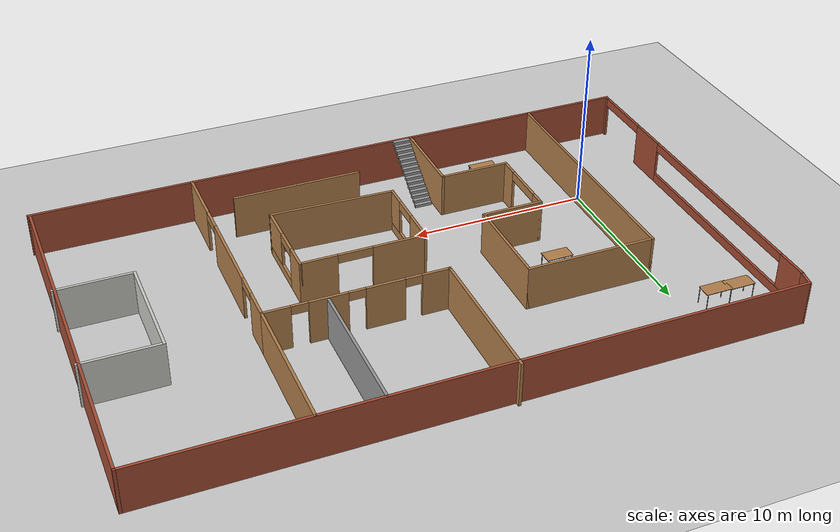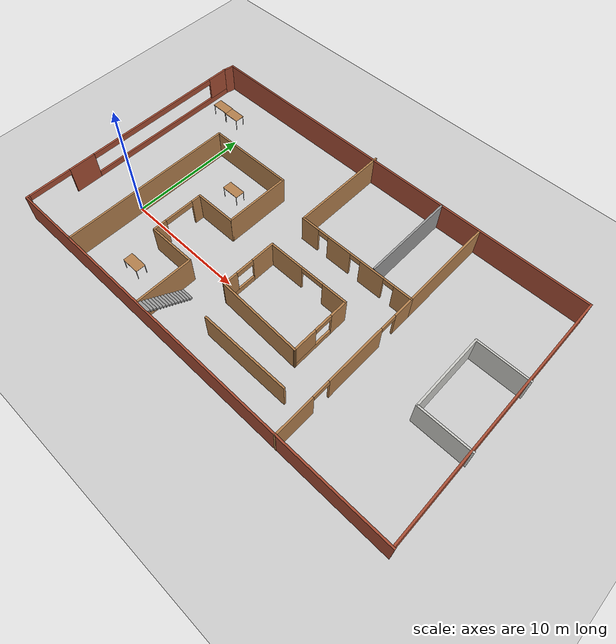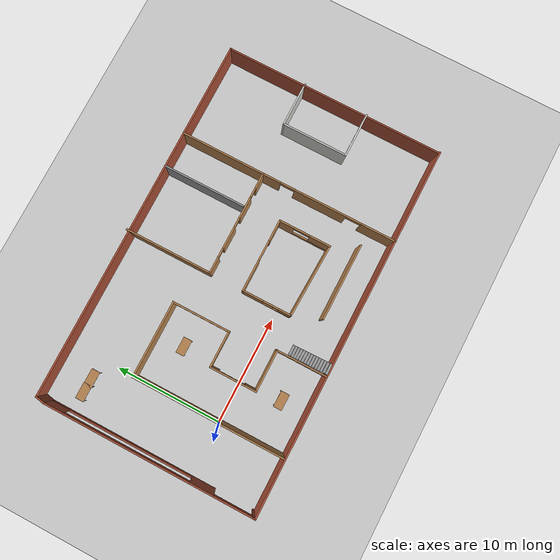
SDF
<sdf version="1.6">
 <world name="default">
  <model name="ground_plane">
   <static>1</static>
   <link name="link">
    <collision name="collision">
     <geometry><plane><normal>0 0 1</normal><size>100 100</size></plane></geometry>
     <surface><friction><ode><mu>100</mu><mu2>50</mu2></ode></friction></surface>
    </collision>
    <visual name="visual">
     <cast_shadows>0</cast_shadows>
     <geometry><plane><normal>0 0 1</normal><size>100 100</size></plane></geometry>
     <material>
      <script><uri>file://media/materials/scripts/gazebo.material</uri><name>Gazebo/Grey</name></script>
     </material>
    </visual>
   </link>
  </model>
  <model name="mybuilding">
   <pose>12.3376 4.27138 0 0 -0 0</pose>
   <link name="Stairs_0">
    <visual name="Stairs_0_Visual_0">
     <pose>-3.86206 -7.02365 0.083333 0 -0 0</pose>
     <geometry><box><size>1 0.233333 0.166667</size></box></geometry>
     <material>
      <script><uri>file://media/materials/scripts/gazebo.material</uri><name>Gazebo/Grey</name></script>
      <ambient>1 1 1 1</ambient>
     </material>
     <meta><layer>0</layer></meta>
    </visual>
    <collision name="Stairs_0_Collision_0">
     <geometry><box><size>1 0.233333 0.166667</size></box></geometry>
     <pose>-3.86206 -7.02365 0.083333 0 -0 0</pose>
    </collision>
    <visual name="Stairs_0_Visual_1">
     <pose>-3.86206 -7.25699 0.25 0 -0 0</pose>
     <geometry><box><size>1 0.233333 0.166667</size></box></geometry>
     <material>
      <script><uri>file://media/materials/scripts/gazebo.material</uri><name>Gazebo/Grey</name></script>
      <ambient>1 1 1 1</ambient>
     </material>
     <meta><layer>0</layer></meta>
    </visual>
    <collision name="Stairs_0_Collision_1">
     <geometry><box><size>1 0.233333 0.166667</size></box></geometry>
     <pose>-3.86206 -7.25699 0.25 0 -0 0</pose>
    </collision>
    <visual name="Stairs_0_Visual_2">
     <pose>-3.86206 -7.49032 0.416667 0 -0 0</pose>
     <geometry><box><size>1 0.233333 0.166667</size></box></geometry>
     <material>
      <script><uri>file://media/materials/scripts/gazebo.material</uri><name>Gazebo/Grey</name></script>
      <ambient>1 1 1 1</ambient>
     </material>
     <meta><layer>0</layer></meta>
    </visual>
    <collision name="Stairs_0_Collision_2">
     <geometry><box><size>1 0.233333 0.166667</size></box></geometry>
     <pose>-3.86206 -7.49032 0.416667 0 -0 0</pose>
    </collision>
    <visual name="Stairs_0_Visual_3">
     <pose>-3.86206 -7.72365 0.583333 0 -0 0</pose>
     <geometry><box><size>1 0.233333 0.166667</size></box></geometry>
     <material>
      <script><uri>file://media/materials/scripts/gazebo.material</uri><name>Gazebo/Grey</name></script>
      <ambient>1 1 1 1</ambient>
     </material>
     <meta><layer>0</layer></meta>
    </visual>
    <collision name="Stairs_0_Collision_3">
     <geometry><box><size>1 0.233333 0.166667</size></box></geometry>
     <pose>-3.86206 -7.72365 0.583333 0 -0 0</pose>
    </collision>
    <visual name="Stairs_0_Visual_4">
     <pose>-3.86206 -7.95699 0.75 0 -0 0</pose>
     <geometry><box><size>1 0.233333 0.166667</size></box></geometry>
     <material>
      <script><uri>file://media/materials/scripts/gazebo.material</uri><name>Gazebo/Grey</name></script>
      <ambient>1 1 1 1</ambient>
     </material>
     <meta><layer>0</layer></meta>
    </visual>
    <collision name="Stairs_0_Collision_4">
     <geometry><box><size>1 0.233333 0.166667</size></box></geometry>
     <pose>-3.86206 -7.95699 0.75 0 -0 0</pose>
    </collision>
    <visual name="Stairs_0_Visual_5">
     <pose>-3.86206 -8.19032 0.916667 0 -0 0</pose>
     <geometry><box><size>1 0.233333 0.166667</size></box></geometry>
     <material>
      <script><uri>file://media/materials/scripts/gazebo.material</uri><name>Gazebo/Grey</name></script>
      <ambient>1 1 1 1</ambient>
     </material>
     <meta><layer>0</layer></meta>
    </visual>
    <collision name="Stairs_0_Collision_5">
     <geometry><box><size>1 0.233333 0.166667</size></box></geometry>
     <pose>-3.86206 -8.19032 0.916667 0 -0 0</pose>
    </collision>
    <visual name="Stairs_0_Visual_6">
     <pose>-3.86206 -8.42365 1.08333 0 -0 0</pose>
     <geometry><box><size>1 0.233333 0.166667</size></box></geometry>
     <material>
      <script><uri>file://media/materials/scripts/gazebo.material</uri><name>Gazebo/Grey</name></script>
      <ambient>1 1 1 1</ambient>
     </material>
     <meta><layer>0</layer></meta>
    </visual>
    <collision name="Stairs_0_Collision_6">
     <geometry><box><size>1 0.233333 0.166667</size></box></geometry>
     <pose>-3.86206 -8.42365 1.08333 0 -0 0</pose>
    </collision>
    <visual name="Stairs_0_Visual_7">
     <pose>-3.86206 -8.65699 1.25 0 -0 0</pose>
     <geometry><box><size>1 0.233333 0.166667</size></box></geometry>
     <material>
      <script><uri>file://media/materials/scripts/gazebo.material</uri><name>Gazebo/Grey</name></script>
      <ambient>1 1 1 1</ambient>
     </material>
     <meta><layer>0</layer></meta>
    </visual>
    <collision name="Stairs_0_Collision_7">
     <geometry><box><size>1 0.233333 0.166667</size></box></geometry>
     <pose>-3.86206 -8.65699 1.25 0 -0 0</pose>
    </collision>
    <visual name="Stairs_0_Visual_8">
     <pose>-3.86206 -8.89032 1.41667 0 -0 0</pose>
     <geometry><box><size>1 0.233333 0.166667</size></box></geometry>
     <material>
      <script><uri>file://media/materials/scripts/gazebo.material</uri><name>Gazebo/Grey</name></script>
      <ambient>1 1 1 1</ambient>
     </material>
     <meta><layer>0</layer></meta>
    </visual>
    <collision name="Stairs_0_Collision_8">
     <geometry><box><size>1 0.233333 0.166667</size></box></geometry>
     <pose>-3.86206 -8.89032 1.41667 0 -0 0</pose>
    </collision>
    <visual name="Stairs_0_Visual_9">
     <pose>-3.86206 -9.12365 1.58333 0 -0 0</pose>
     <geometry><box><size>1 0.233333 0.166667</size></box></geometry>
     <material>
      <script><uri>file://media/materials/scripts/gazebo.material</uri><name>Gazebo/Grey</name></script>
      <ambient>1 1 1 1</ambient>
     </material>
     <meta><layer>0</layer></meta>
    </visual>
    <collision name="Stairs_0_Collision_9">
     <geometry><box><size>1 0.233333 0.166667</size></box></geometry>
     <pose>-3.86206 -9.12365 1.58333 0 -0 0</pose>
    </collision>
    <visual name="Stairs_0_Visual_10">
     <pose>-3.86206 -9.35698 1.75 0 -0 0</pose>
     <geometry><box><size>1 0.233333 0.166667</size></box></geometry>
     <material>
      <script><uri>file://media/materials/scripts/gazebo.material</uri><name>Gazebo/Grey</name></script>
      <ambient>1 1 1 1</ambient>
     </material>
     <meta><layer>0</layer></meta>
    </visual>
    <collision name="Stairs_0_Collision_10">
     <geometry><box><size>1 0.233333 0.166667</size></box></geometry>
     <pose>-3.86206 -9.35698 1.75 0 -0 0</pose>
    </collision>
    <visual name="Stairs_0_Visual_11">
     <pose>-3.86206 -9.59032 1.91667 0 -0 0</pose>
     <geometry><box><size>1 0.233333 0.166667</size></box></geometry>
     <material>
      <script><uri>file://media/materials/scripts/gazebo.material</uri><name>Gazebo/Grey</name></script>
      <ambient>1 1 1 1</ambient>
     </material>
     <meta><layer>0</layer></meta>
    </visual>
    <collision name="Stairs_0_Collision_11">
     <geometry><box><size>1 0.233333 0.166667</size></box></geometry>
     <pose>-3.86206 -9.59032 1.91667 0 -0 0</pose>
    </collision>
    <visual name="Stairs_0_Visual_12">
     <pose>-3.86206 -9.82365 2.08333 0 -0 0</pose>
     <geometry><box><size>1 0.233333 0.166667</size></box></geometry>
     <material>
      <script><uri>file://media/materials/scripts/gazebo.material</uri><name>Gazebo/Grey</name></script>
      <ambient>1 1 1 1</ambient>
     </material>
     <meta><layer>0</layer></meta>
    </visual>
    <collision name="Stairs_0_Collision_12">
     <geometry><box><size>1 0.233333 0.166667</size></box></geometry>
     <pose>-3.86206 -9.82365 2.08333 0 -0 0</pose>
    </collision>
    <visual name="Stairs_0_Visual_13">
     <pose>-3.86206 -10.057 2.25 0 -0 0</pose>
     <geometry><box><size>1 0.233333 0.166667</size></box></geometry>
     <material>
      <script><uri>file://media/materials/scripts/gazebo.material</uri><name>Gazebo/Grey</name></script>
      <ambient>1 1 1 1</ambient>
     </material>
     <meta><layer>0</layer></meta>
    </visual>
    <collision name="Stairs_0_Collision_13">
     <geometry><box><size>1 0.233333 0.166667</size></box></geometry>
     <pose>-3.86206 -10.057 2.25 0 -0 0</pose>
    </collision>
    <visual name="Stairs_0_Visual_14">
     <pose>-3.86206 -10.2903 2.41667 0 -0 0</pose>
     <geometry><box><size>1 0.233333 0.166667</size></box></geometry>
     <material>
      <script><uri>file://media/materials/scripts/gazebo.material</uri><name>Gazebo/Grey</name></script>
      <ambient>1 1 1 1</ambient>
     </material>
     <meta><layer>0</layer></meta>
    </visual>
    <collision name="Stairs_0_Collision_14">
     <geometry><box><size>1 0.233333 0.166667</size></box></geometry>
     <pose>-3.86206 -10.2903 2.41667 0 -0 0</pose>
    </collision>
   </link>
   <link name="Wall_0">
    <pose>-17.4376 -0.526378 0 0 -0 1.5708</pose>
    <visual name="Wall_0_Visual_0">
     <pose>-9.83589 0 1.25 0 -0 0</pose>
     <geometry><box><size>0.328223 0.15 2.5</size></box></geometry>
     <material>
      <script><uri>file://media/materials/scripts/gazebo.material</uri><name>Gazebo/Bricks</name></script>
      <ambient>0.666667 1 1 1</ambient>
     </material>
     <meta><layer>0</layer></meta>
    </visual>
    <collision name="Wall_0_Collision_0">
     <geometry><box><size>0.328223 0.15 2.5</size></box></geometry>
     <pose>-9.83589 0 1.25 0 -0 0</pose>
    </collision>
    <visual name="Wall_0_Visual_1">
     <pose>-4.95614 0 1.25 0 -0 0</pose>
     <geometry><box><size>2.26813 0.15 2.5</size></box></geometry>
     <material>
      <script><uri>file://media/materials/scripts/gazebo.material</uri><name>Gazebo/Bricks</name></script>
      <ambient>0.666667 1 1 1</ambient>
     </material>
     <meta><layer>0</layer></meta>
    </visual>
    <collision name="Wall_0_Collision_1">
     <geometry><box><size>2.26813 0.15 2.5</size></box></geometry>
     <pose>-4.95614 0 1.25 0 -0 0</pose>
    </collision>
    <visual name="Wall_0_Visual_2">
     <pose>3.08896 0 0.25 0 -0 0</pose>
     <geometry><box><size>13.8221 0.15 0.5</size></box></geometry>
     <material>
      <script><uri>file://media/materials/scripts/gazebo.material</uri><name>Gazebo/Bricks</name></script>
      <ambient>0.666667 1 1 1</ambient>
     </material>
     <meta><layer>0</layer></meta>
    </visual>
    <collision name="Wall_0_Collision_2">
     <geometry><box><size>13.8221 0.15 0.5</size></box></geometry>
     <pose>3.08896 0 0.25 0 -0 0</pose>
    </collision>
    <visual name="Wall_0_Visual_3">
     <pose>9.08868 0 1.5 0 -0 0</pose>
     <geometry><box><size>1.82263 0.15 2</size></box></geometry>
     <material>
      <script><uri>file://media/materials/scripts/gazebo.material</uri><name>Gazebo/Bricks</name></script>
      <ambient>0.666667 1 1 1</ambient>
     </material>
     <meta><layer>0</layer></meta>
    </visual>
    <collision name="Wall_0_Collision_3">
     <geometry><box><size>1.82263 0.15 2</size></box></geometry>
     <pose>9.08868 0 1.5 0 -0 0</pose>
    </collision>
    <visual name="Wall_0_Visual_4">
     <pose>-7.88099 0 2.25 0 -0 0</pose>
     <geometry><box><size>3.58157 0.15 0.5</size></box></geometry>
     <material>
      <script><uri>file://media/materials/scripts/gazebo.material</uri><name>Gazebo/Bricks</name></script>
      <ambient>0.666667 1 1 1</ambient>
     </material>
     <meta><layer>0</layer></meta>
    </visual>
    <collision name="Wall_0_Collision_4">
     <geometry><box><size>3.58157 0.15 0.5</size></box></geometry>
     <pose>-7.88099 0 2.25 0 -0 0</pose>
    </collision>
    <visual name="Wall_0_Visual_5">
     <pose>2.17765 0 2.25 0 -0 0</pose>
     <geometry><box><size>11.9994 0.15 0.5</size></box></geometry>
     <material>
      <script><uri>file://media/materials/scripts/gazebo.material</uri><name>Gazebo/Bricks</name></script>
      <ambient>0.666667 1 1 1</ambient>
     </material>
     <meta><layer>0</layer></meta>
    </visual>
    <collision name="Wall_0_Collision_5">
     <geometry><box><size>11.9994 0.15 0.5</size></box></geometry>
     <pose>2.17765 0 2.25 0 -0 0</pose>
    </collision>
   </link>
   <link name="Wall_10">
    <collision name="Wall_10_Collision">
     <geometry><box><size>1.02253 0.15 2.5</size></box></geometry>
     <pose>0 0 1.25 0 -0 0</pose>
    </collision>
    <visual name="Wall_10_Visual">
     <pose>0 0 1.25 0 -0 0</pose>
     <geometry><box><size>1.02253 0.15 2.5</size></box></geometry>
     <material>
      <script><uri>file://media/materials/scripts/gazebo.material</uri><name>Gazebo/Bricks</name></script>
      <ambient>0.435294 0.796078 0.67451 1</ambient>
     </material>
     <meta><layer>0</layer></meta>
    </visual>
    <pose>-17.3541 9.82682 0 0 -0 1.3782</pose>
   </link>
   <link name="Wall_12">
    <collision name="Wall_12_Collision">
     <geometry><box><size>14.5 0.15 2.5</size></box></geometry>
     <pose>0 0 1.25 0 -0 0</pose>
    </collision>
    <visual name="Wall_12_Visual">
     <pose>0 0 1.25 0 -0 0</pose>
     <geometry><box><size>14.5 0.15 2.5</size></box></geometry>
     <material>
      <script><uri>file://media/materials/scripts/gazebo.material</uri><name>Gazebo/Wood</name></script>
      <ambient>1 1 1 1</ambient>
     </material>
     <meta><layer>0</layer></meta>
    </visual>
    <pose>-12.1051 -3.24089 0 0 -0 1.5708</pose>
   </link>
   <link name="Wall_13">
    <collision name="Wall_13_Collision">
     <geometry><box><size>7.25 0.15 2.5</size></box></geometry>
     <pose>0 0 1.25 0 -0 0</pose>
    </collision>
    <visual name="Wall_13_Visual">
     <pose>0 0 1.25 0 -0 0</pose>
     <geometry><box><size>7.25 0.15 2.5</size></box></geometry>
     <material>
      <script><uri>file://media/materials/scripts/gazebo.material</uri><name>Gazebo/Wood</name></script>
      <ambient>1 1 1 1</ambient>
     </material>
     <meta><layer>0</layer></meta>
    </visual>
    <pose>-8.55514 3.93411 0 0 -0 0</pose>
   </link>
   <link name="Wall_14">
    <collision name="Wall_14_Collision">
     <geometry><box><size>5.5 0.15 2.5</size></box></geometry>
     <pose>0 0 1.25 0 -0 0</pose>
    </collision>
    <visual name="Wall_14_Visual">
     <pose>0 0 1.25 0 -0 0</pose>
     <geometry><box><size>5.5 0.15 2.5</size></box></geometry>
     <material>
      <script><uri>file://media/materials/scripts/gazebo.material</uri><name>Gazebo/Wood</name></script>
      <ambient>1 1 1 1</ambient>
     </material>
     <meta><layer>0</layer></meta>
    </visual>
    <pose>-5.00514 1.25911 0 0 0 -1.5708</pose>
   </link>
   <link name="Wall_15">
    <collision name="Wall_15_Collision">
     <geometry><box><size>3.5 0.15 2.5</size></box></geometry>
     <pose>0 0 1.25 0 -0 0</pose>
    </collision>
    <visual name="Wall_15_Visual">
     <pose>0 0 1.25 0 -0 0</pose>
     <geometry><box><size>3.5 0.15 2.5</size></box></geometry>
     <material>
      <script><uri>file://media/materials/scripts/gazebo.material</uri><name>Gazebo/Wood</name></script>
      <ambient>1 1 1 1</ambient>
     </material>
     <meta><layer>0</layer></meta>
    </visual>
    <pose>-6.68015 -1.41589 0 0 -0 3.14159</pose>
   </link>
   <link name="Wall_16">
    <pose>-8.35515 -3.59089 0 0 0 -1.5708</pose>
    <visual name="Wall_16_Visual_0">
     <pose>-1.80371 0 1.25 0 -0 0</pose>
     <geometry><box><size>0.892589 0.15 2.5</size></box></geometry>
     <material>
      <script><uri>file://media/materials/scripts/gazebo.material</uri><name>Gazebo/Wood</name></script>
      <ambient>1 1 1 1</ambient>
     </material>
     <meta><layer>0</layer></meta>
    </visual>
    <collision name="Wall_16_Collision_0">
     <geometry><box><size>0.892589 0.15 2.5</size></box></geometry>
     <pose>-1.80371 0 1.25 0 -0 0</pose>
    </collision>
    <visual name="Wall_16_Visual_1">
     <pose>1.67277 0 1.25 0 -0 0</pose>
     <geometry><box><size>1.15445 0.15 2.5</size></box></geometry>
     <material>
      <script><uri>file://media/materials/scripts/gazebo.material</uri><name>Gazebo/Wood</name></script>
      <ambient>1 1 1 1</ambient>
     </material>
     <meta><layer>0</layer></meta>
    </visual>
    <collision name="Wall_16_Collision_1">
     <geometry><box><size>1.15445 0.15 2.5</size></box></geometry>
     <pose>1.67277 0 1.25 0 -0 0</pose>
    </collision>
    <visual name="Wall_16_Visual_2">
     <pose>-0.130931 0 2.25 0 -0 0</pose>
     <geometry><box><size>2.45296 0.15 0.5</size></box></geometry>
     <material>
      <script><uri>file://media/materials/scripts/gazebo.material</uri><name>Gazebo/Wood</name></script>
      <ambient>1 1 1 1</ambient>
     </material>
     <meta><layer>0</layer></meta>
    </visual>
    <collision name="Wall_16_Collision_2">
     <geometry><box><size>2.45296 0.15 0.5</size></box></geometry>
     <pose>-0.130931 0 2.25 0 -0 0</pose>
    </collision>
   </link>
   <link name="Wall_17">
    <collision name="Wall_17_Collision">
     <geometry><box><size>4 0.15 2.5</size></box></geometry>
     <pose>0 0 1.25 0 -0 0</pose>
    </collision>
    <visual name="Wall_17_Visual">
     <pose>0 0 1.25 0 -0 0</pose>
     <geometry><box><size>4 0.15 2.5</size></box></geometry>
     <material>
      <script><uri>file://media/materials/scripts/gazebo.material</uri><name>Gazebo/Wood</name></script>
      <ambient>1 1 1 1</ambient>
     </material>
     <meta><layer>0</layer></meta>
    </visual>
    <pose>-6.43015 -5.76589 0 0 -0 0</pose>
   </link>
   <link name="Wall_18">
    <collision name="Wall_18_Collision">
     <geometry><box><size>4.75 0.15 2.5</size></box></geometry>
     <pose>0 0 1.25 0 -0 0</pose>
    </collision>
    <visual name="Wall_18_Visual">
     <pose>0 0 1.25 0 -0 0</pose>
     <geometry><box><size>4.75 0.15 2.5</size></box></geometry>
     <material>
      <script><uri>file://media/materials/scripts/gazebo.material</uri><name>Gazebo/Wood</name></script>
      <ambient>1 1 1 1</ambient>
     </material>
     <meta><layer>0</layer></meta>
    </visual>
    <pose>-4.50514 -8.06589 0 0 0 -1.5708</pose>
   </link>
   <link name="Wall_2">
    <collision name="Wall_2_Collision">
     <geometry><box><size>35 0.15 2.5</size></box></geometry>
     <pose>0 0 1.25 0 -0 0</pose>
    </collision>
    <visual name="Wall_2_Visual">
     <pose>0 0 1.25 0 -0 0</pose>
     <geometry><box><size>35 0.15 2.5</size></box></geometry>
     <material>
      <script><uri>file://media/materials/scripts/gazebo.material</uri><name>Gazebo/Bricks</name></script>
      <ambient>0.666667 1 1 1</ambient>
     </material>
     <meta><layer>0</layer></meta>
    </visual>
    <pose>-0.012578 -10.4514 0 0 -0 0</pose>
   </link>
   <link name="Wall_20">
    <collision name="Wall_20_Collision">
     <geometry><box><size>8.25 0.15 2.5</size></box></geometry>
     <pose>0 0 1.25 0 -0 0</pose>
    </collision>
    <visual name="Wall_20_Visual">
     <pose>0 0 1.25 0 -0 0</pose>
     <geometry><box><size>8.25 0.15 2.5</size></box></geometry>
     <material>
      <script><uri>file://media/materials/scripts/gazebo.material</uri><name>Gazebo/Wood</name></script>
      <ambient>1 1 1 1</ambient>
     </material>
     <meta><layer>0</layer></meta>
    </visual>
    <pose>-1.34961 6.425 0 0 0 -1.5708</pose>
   </link>
   <link name="Wall_21">
    <pose>3.57539 2.375 0 0 -0 0</pose>
    <visual name="Wall_21_Visual_0">
     <pose>-4.20415 0 1.25 0 -0 0</pose>
     <geometry><box><size>1.5917 0.15 2.5</size></box></geometry>
     <material>
      <script><uri>file://media/materials/scripts/gazebo.material</uri><name>Gazebo/Wood</name></script>
      <ambient>1 1 1 1</ambient>
     </material>
     <meta><layer>0</layer></meta>
    </visual>
    <collision name="Wall_21_Collision_0">
     <geometry><box><size>1.5917 0.15 2.5</size></box></geometry>
     <pose>-4.20415 0 1.25 0 -0 0</pose>
    </collision>
    <visual name="Wall_21_Visual_1">
     <pose>-1.46063 0 1.25 0 -0 0</pose>
     <geometry><box><size>2.09534 0.15 2.5</size></box></geometry>
     <material>
      <script><uri>file://media/materials/scripts/gazebo.material</uri><name>Gazebo/Wood</name></script>
      <ambient>1 1 1 1</ambient>
     </material>
     <meta><layer>0</layer></meta>
    </visual>
    <collision name="Wall_21_Collision_1">
     <geometry><box><size>2.09534 0.15 2.5</size></box></geometry>
     <pose>-1.46063 0 1.25 0 -0 0</pose>
    </collision>
    <visual name="Wall_21_Visual_2">
     <pose>1.52422 0 1.25 0 -0 0</pose>
     <geometry><box><size>2.07438 0.15 2.5</size></box></geometry>
     <material>
      <script><uri>file://media/materials/scripts/gazebo.material</uri><name>Gazebo/Wood</name></script>
      <ambient>1 1 1 1</ambient>
     </material>
     <meta><layer>0</layer></meta>
    </visual>
    <collision name="Wall_21_Collision_2">
     <geometry><box><size>2.07438 0.15 2.5</size></box></geometry>
     <pose>1.52422 0 1.25 0 -0 0</pose>
    </collision>
    <visual name="Wall_21_Visual_3">
     <pose>4.23071 0 1.25 0 -0 0</pose>
     <geometry><box><size>1.53858 0.15 2.5</size></box></geometry>
     <material>
      <script><uri>file://media/materials/scripts/gazebo.material</uri><name>Gazebo/Wood</name></script>
      <ambient>1 1 1 1</ambient>
     </material>
     <meta><layer>0</layer></meta>
    </visual>
    <collision name="Wall_21_Collision_3">
     <geometry><box><size>1.53858 0.15 2.5</size></box></geometry>
     <pose>4.23071 0 1.25 0 -0 0</pose>
    </collision>
    <visual name="Wall_21_Visual_4">
     <pose>-2.9583 0 2.25 0 -0 0</pose>
     <geometry><box><size>0.9 0.15 0.5</size></box></geometry>
     <material>
      <script><uri>file://media/materials/scripts/gazebo.material</uri><name>Gazebo/Wood</name></script>
      <ambient>1 1 1 1</ambient>
     </material>
     <meta><layer>0</layer></meta>
    </visual>
    <collision name="Wall_21_Collision_4">
     <geometry><box><size>0.9 0.15 0.5</size></box></geometry>
     <pose>-2.9583 0 2.25 0 -0 0</pose>
    </collision>
    <visual name="Wall_21_Visual_5">
     <pose>0.037033 0 2.25 0 -0 0</pose>
     <geometry><box><size>0.9 0.15 0.5</size></box></geometry>
     <material>
      <script><uri>file://media/materials/scripts/gazebo.material</uri><name>Gazebo/Wood</name></script>
      <ambient>1 1 1 1</ambient>
     </material>
     <meta><layer>0</layer></meta>
    </visual>
    <collision name="Wall_21_Collision_5">
     <geometry><box><size>0.9 0.15 0.5</size></box></geometry>
     <pose>0.037033 0 2.25 0 -0 0</pose>
    </collision>
    <visual name="Wall_21_Visual_6">
     <pose>3.01142 0 2.25 0 -0 0</pose>
     <geometry><box><size>0.9 0.15 0.5</size></box></geometry>
     <material>
      <script><uri>file://media/materials/scripts/gazebo.material</uri><name>Gazebo/Wood</name></script>
      <ambient>1 1 1 1</ambient>
     </material>
     <meta><layer>0</layer></meta>
    </visual>
    <collision name="Wall_21_Collision_6">
     <geometry><box><size>0.9 0.15 0.5</size></box></geometry>
     <pose>3.01142 0 2.25 0 -0 0</pose>
    </collision>
   </link>
   <link name="Wall_25">
    <collision name="Wall_25_Collision">
     <geometry><box><size>8 0.15 2.5</size></box></geometry>
     <pose>0 0 1.25 0 -0 0</pose>
    </collision>
    <visual name="Wall_25_Visual">
     <pose>0 0 1.25 0 -0 0</pose>
     <geometry><box><size>8 0.15 2.5</size></box></geometry>
     <material>
      <script><uri>file://media/materials/scripts/gazebo.material</uri><name>Gazebo/Wood</name></script>
      <ambient>1 1 1 1</ambient>
     </material>
     <meta><layer>0</layer></meta>
    </visual>
    <pose>8.50039 6.3 0 0 -0 1.5708</pose>
   </link>
   <link name="Wall_29">
    <pose>8.50039 -4.05 0 0 0 -1.5708</pose>
    <visual name="Wall_29_Visual_0">
     <pose>-5.605 0 1.25 0 -0 0</pose>
     <geometry><box><size>1.79001 0.15 2.5</size></box></geometry>
     <material>
      <script><uri>file://media/materials/scripts/gazebo.material</uri><name>Gazebo/Wood</name></script>
      <ambient>1 1 1 1</ambient>
     </material>
     <meta><layer>0</layer></meta>
    </visual>
    <collision name="Wall_29_Collision_0">
     <geometry><box><size>1.79001 0.15 2.5</size></box></geometry>
     <pose>-5.605 0 1.25 0 -0 0</pose>
    </collision>
    <visual name="Wall_29_Visual_1">
     <pose>-0.813872 0 1.25 0 -0 0</pose>
     <geometry><box><size>5.05087 0.15 2.5</size></box></geometry>
     <material>
      <script><uri>file://media/materials/scripts/gazebo.material</uri><name>Gazebo/Wood</name></script>
      <ambient>1 1 1 1</ambient>
     </material>
     <meta><layer>0</layer></meta>
    </visual>
    <collision name="Wall_29_Collision_1">
     <geometry><box><size>5.05087 0.15 2.5</size></box></geometry>
     <pose>-0.813872 0 1.25 0 -0 0</pose>
    </collision>
    <visual name="Wall_29_Visual_2">
     <pose>4.82475 0 1.25 0 -0 0</pose>
     <geometry><box><size>3.35051 0.15 2.5</size></box></geometry>
     <material>
      <script><uri>file://media/materials/scripts/gazebo.material</uri><name>Gazebo/Wood</name></script>
      <ambient>1 1 1 1</ambient>
     </material>
     <meta><layer>0</layer></meta>
    </visual>
    <collision name="Wall_29_Collision_2">
     <geometry><box><size>3.35051 0.15 2.5</size></box></geometry>
     <pose>4.82475 0 1.25 0 -0 0</pose>
    </collision>
    <visual name="Wall_29_Visual_3">
     <pose>-4.02465 0 2.25 0 -0 0</pose>
     <geometry><box><size>1.37069 0.15 0.5</size></box></geometry>
     <material>
      <script><uri>file://media/materials/scripts/gazebo.material</uri><name>Gazebo/Wood</name></script>
      <ambient>1 1 1 1</ambient>
     </material>
     <meta><layer>0</layer></meta>
    </visual>
    <collision name="Wall_29_Collision_3">
     <geometry><box><size>1.37069 0.15 0.5</size></box></geometry>
     <pose>-4.02465 0 2.25 0 -0 0</pose>
    </collision>
    <visual name="Wall_29_Visual_4">
     <pose>2.43053 0 2.25 0 -0 0</pose>
     <geometry><box><size>1.43793 0.15 0.5</size></box></geometry>
     <material>
      <script><uri>file://media/materials/scripts/gazebo.material</uri><name>Gazebo/Wood</name></script>
      <ambient>1 1 1 1</ambient>
     </material>
     <meta><layer>0</layer></meta>
    </visual>
    <collision name="Wall_29_Collision_4">
     <geometry><box><size>1.43793 0.15 0.5</size></box></geometry>
     <pose>2.43053 0 2.25 0 -0 0</pose>
    </collision>
   </link>
   <link name="Wall_31">
    <collision name="Wall_31_Collision">
     <geometry><box><size>4.25 0.15 2.5</size></box></geometry>
     <pose>0 0 1.25 0 -0 0</pose>
    </collision>
    <visual name="Wall_31_Visual">
     <pose>0 0 1.25 0 -0 0</pose>
     <geometry><box><size>4.25 0.15 2.5</size></box></geometry>
     <material>
      <script><uri>file://media/materials/scripts/gazebo.material</uri><name>Gazebo/CeilingTiled</name></script>
      <ambient>0.435294 0.796078 0.67451 1</ambient>
     </material>
     <meta><layer>0</layer></meta>
    </visual>
    <pose>15.4005 2.85446 0 0 -0 3.14159</pose>
   </link>
   <link name="Wall_32">
    <collision name="Wall_32_Collision">
     <geometry><box><size>6.25 0.15 2.5</size></box></geometry>
     <pose>0 0 1.25 0 -0 0</pose>
    </collision>
    <visual name="Wall_32_Visual">
     <pose>0 0 1.25 0 -0 0</pose>
     <geometry><box><size>6.25 0.15 2.5</size></box></geometry>
     <material>
      <script><uri>file://media/materials/scripts/gazebo.material</uri><name>Gazebo/CeilingTiled</name></script>
      <ambient>0.435294 0.796078 0.67451 1</ambient>
     </material>
     <meta><layer>0</layer></meta>
    </visual>
    <pose>13.3505 -0.195546 0 0 0 -1.5708</pose>
   </link>
   <link name="Wall_33">
    <collision name="Wall_33_Collision">
     <geometry><box><size>4.25 0.15 2.5</size></box></geometry>
     <pose>0 0 1.25 0 -0 0</pose>
    </collision>
    <visual name="Wall_33_Visual">
     <pose>0 0 1.25 0 -0 0</pose>
     <geometry><box><size>4.25 0.15 2.5</size></box></geometry>
     <material>
      <script><uri>file://media/materials/scripts/gazebo.material</uri><name>Gazebo/CeilingTiled</name></script>
      <ambient>0.435294 0.796078 0.67451 1</ambient>
     </material>
     <meta><layer>0</layer></meta>
    </visual>
    <pose>15.4005 -3.24555 0 0 -0 0</pose>
   </link>
   <link name="Wall_35">
    <collision name="Wall_35_Collision">
     <geometry><box><size>7.25 0.15 2.5</size></box></geometry>
     <pose>0 0 1.25 0 -0 0</pose>
    </collision>
    <visual name="Wall_35_Visual">
     <pose>0 0 1.25 0 -0 0</pose>
     <geometry><box><size>7.25 0.15 2.5</size></box></geometry>
     <material>
      <script><uri>file://media/materials/scripts/gazebo.material</uri><name>Gazebo/Wood</name></script>
      <ambient>1 1 1 1</ambient>
     </material>
     <meta><layer>0</layer></meta>
    </visual>
    <pose>3.24004 -7.99919 0 0 -0 0</pose>
   </link>
   <link name="Wall_37">
    <pose>2.06257 -0.829206 0 0 -0 0</pose>
    <visual name="Wall_37_Visual_0">
     <pose>-2.00216 0 1.25 0 -0 0</pose>
     <geometry><box><size>2.99569 0.15 2.5</size></box></geometry>
     <material>
      <script><uri>file://media/materials/scripts/gazebo.material</uri><name>Gazebo/Wood</name></script>
      <ambient>1 1 1 1</ambient>
     </material>
     <meta><layer>0</layer></meta>
    </visual>
    <collision name="Wall_37_Collision_0">
     <geometry><box><size>2.99569 0.15 2.5</size></box></geometry>
     <pose>-2.00216 0 1.25 0 -0 0</pose>
    </collision>
    <visual name="Wall_37_Visual_1">
     <pose>2.45215 0 1.25 0 -0 0</pose>
     <geometry><box><size>2.09569 0.15 2.5</size></box></geometry>
     <material>
      <script><uri>file://media/materials/scripts/gazebo.material</uri><name>Gazebo/Wood</name></script>
      <ambient>1 1 1 1</ambient>
     </material>
     <meta><layer>0</layer></meta>
    </visual>
    <collision name="Wall_37_Collision_1">
     <geometry><box><size>2.09569 0.15 2.5</size></box></geometry>
     <pose>2.45215 0 1.25 0 -0 0</pose>
    </collision>
    <visual name="Wall_37_Visual_2">
     <pose>0.45 0 2.25 0 -0 0</pose>
     <geometry><box><size>1.90862 0.15 0.5</size></box></geometry>
     <material>
      <script><uri>file://media/materials/scripts/gazebo.material</uri><name>Gazebo/Wood</name></script>
      <ambient>1 1 1 1</ambient>
     </material>
     <meta><layer>0</layer></meta>
    </visual>
    <collision name="Wall_37_Collision_2">
     <geometry><box><size>1.90862 0.15 0.5</size></box></geometry>
     <pose>0.45 0 2.25 0 -0 0</pose>
    </collision>
   </link>
   <link name="Wall_38">
    <pose>5.48757 -3.25421 0 0 0 -1.5708</pose>
    <visual name="Wall_38_Visual_0">
     <pose>-1.75171 0 1.25 0 -0 0</pose>
     <geometry><box><size>1.49658 0.15 2.5</size></box></geometry>
     <material>
      <script><uri>file://media/materials/scripts/gazebo.material</uri><name>Gazebo/Wood</name></script>
      <ambient>1 1 1 1</ambient>
     </material>
     <meta><layer>0</layer></meta>
    </visual>
    <collision name="Wall_38_Collision_0">
     <geometry><box><size>1.49658 0.15 2.5</size></box></geometry>
     <pose>-1.75171 0 1.25 0 -0 0</pose>
    </collision>
    <visual name="Wall_38_Visual_1">
     <pose>0.748289 0 0.25 0 -0 0</pose>
     <geometry><box><size>3.50342 0.15 0.5</size></box></geometry>
     <material>
      <script><uri>file://media/materials/scripts/gazebo.material</uri><name>Gazebo/Wood</name></script>
      <ambient>1 1 1 1</ambient>
     </material>
     <meta><layer>0</layer></meta>
    </visual>
    <collision name="Wall_38_Collision_1">
     <geometry><box><size>3.50342 0.15 0.5</size></box></geometry>
     <pose>0.748289 0 0.25 0 -0 0</pose>
    </collision>
    <visual name="Wall_38_Visual_2">
     <pose>1.49829 0 1.5 0 -0 0</pose>
     <geometry><box><size>2.00342 0.15 2</size></box></geometry>
     <material>
      <script><uri>file://media/materials/scripts/gazebo.material</uri><name>Gazebo/Wood</name></script>
      <ambient>1 1 1 1</ambient>
     </material>
     <meta><layer>0</layer></meta>
    </visual>
    <collision name="Wall_38_Collision_2">
     <geometry><box><size>2.00342 0.15 2</size></box></geometry>
     <pose>1.49829 0 1.5 0 -0 0</pose>
    </collision>
    <visual name="Wall_38_Visual_3">
     <pose>-0.253423 0 2.25 0 -0 0</pose>
     <geometry><box><size>1.5 0.15 0.5</size></box></geometry>
     <material>
      <script><uri>file://media/materials/scripts/gazebo.material</uri><name>Gazebo/Wood</name></script>
      <ambient>1 1 1 1</ambient>
     </material>
     <meta><layer>0</layer></meta>
    </visual>
    <collision name="Wall_38_Collision_3">
     <geometry><box><size>1.5 0.15 0.5</size></box></geometry>
     <pose>-0.253423 0 2.25 0 -0 0</pose>
    </collision>
   </link>
   <link name="Wall_4">
    <collision name="Wall_4_Collision">
     <geometry><box><size>20.75 0.15 2.5</size></box></geometry>
     <pose>0 0 1.25 0 -0 0</pose>
    </collision>
    <visual name="Wall_4_Visual">
     <pose>0 0 1.25 0 -0 0</pose>
     <geometry><box><size>20.75 0.15 2.5</size></box></geometry>
     <material>
      <script><uri>file://media/materials/scripts/gazebo.material</uri><name>Gazebo/Bricks</name></script>
      <ambient>1 1 1 1</ambient>
     </material>
     <meta><layer>0</layer></meta>
    </visual>
    <pose>17.3294 -0.044979 0 0 -0 1.5708</pose>
   </link>
   <link name="Wall_42">
    <pose>-1.36244 -3.12921 0 0 0 -1.5708</pose>
    <visual name="Wall_42_Visual_0">
     <pose>-1.37456 0 1.25 0 -0 0</pose>
     <geometry><box><size>2.00089 0.15 2.5</size></box></geometry>
     <material>
      <script><uri>file://media/materials/scripts/gazebo.material</uri><name>Gazebo/Wood</name></script>
      <ambient>1 1 1 1</ambient>
     </material>
     <meta><layer>0</layer></meta>
    </visual>
    <collision name="Wall_42_Collision_0">
     <geometry><box><size>2.00089 0.15 2.5</size></box></geometry>
     <pose>-1.37456 0 1.25 0 -0 0</pose>
    </collision>
    <visual name="Wall_42_Visual_1">
     <pose>1.00044 0 0.25 0 -0 0</pose>
     <geometry><box><size>2.74911 0.15 0.5</size></box></geometry>
     <material>
      <script><uri>file://media/materials/scripts/gazebo.material</uri><name>Gazebo/Wood</name></script>
      <ambient>1 1 1 1</ambient>
     </material>
     <meta><layer>0</layer></meta>
    </visual>
    <collision name="Wall_42_Collision_1">
     <geometry><box><size>2.74911 0.15 0.5</size></box></geometry>
     <pose>1.00044 0 0.25 0 -0 0</pose>
    </collision>
    <visual name="Wall_42_Visual_2">
     <pose>1.75044 0 1.5 0 -0 0</pose>
     <geometry><box><size>1.24911 0.15 2</size></box></geometry>
     <material>
      <script><uri>file://media/materials/scripts/gazebo.material</uri><name>Gazebo/Wood</name></script>
      <ambient>1 1 1 1</ambient>
     </material>
     <meta><layer>0</layer></meta>
    </visual>
    <collision name="Wall_42_Collision_2">
     <geometry><box><size>1.24911 0.15 2</size></box></geometry>
     <pose>1.75044 0 1.5 0 -0 0</pose>
    </collision>
    <visual name="Wall_42_Visual_3">
     <pose>0.375888 0 2.25 0 -0 0</pose>
     <geometry><box><size>1.5 0.15 0.5</size></box></geometry>
     <material>
      <script><uri>file://media/materials/scripts/gazebo.material</uri><name>Gazebo/Wood</name></script>
      <ambient>1 1 1 1</ambient>
     </material>
     <meta><layer>0</layer></meta>
    </visual>
    <collision name="Wall_42_Collision_3">
     <geometry><box><size>1.5 0.15 0.5</size></box></geometry>
     <pose>0.375888 0 2.25 0 -0 0</pose>
    </collision>
   </link>
   <link name="Wall_43">
    <collision name="Wall_43_Collision">
     <geometry><box><size>7.00456 0.15 2.5</size></box></geometry>
     <pose>0 0 1.25 0 -0 0</pose>
    </collision>
    <visual name="Wall_43_Visual">
     <pose>0 0 1.25 0 -0 0</pose>
     <geometry><box><size>7.00456 0.15 2.5</size></box></geometry>
     <material>
      <script><uri>file://media/materials/scripts/gazebo.material</uri><name>Gazebo/Wood</name></script>
      <ambient>1 1 1 1</ambient>
     </material>
     <meta><layer>0</layer></meta>
    </visual>
    <pose>2.06257 -5.55421 0 0 0 -0.03648</pose>
   </link>
   <link name="Wall_46">
    <collision name="Wall_46_Collision">
     <geometry><box><size>7.75 0.15 2.5</size></box></geometry>
     <pose>0 0 1.25 0 -0 0</pose>
    </collision>
    <visual name="Wall_46_Visual">
     <pose>0 0 1.25 0 -0 0</pose>
     <geometry><box><size>7.75 0.15 2.5</size></box></geometry>
     <material>
      <script><uri>file://media/materials/scripts/gazebo.material</uri><name>Gazebo/Grey</name></script>
      <ambient>1 1 1 1</ambient>
     </material>
     <meta><layer>0</layer></meta>
    </visual>
    <pose>5.14189 6.38682 0 0 -0 1.5708</pose>
   </link>
   <link name="Wall_8">
    <collision name="Wall_8_Collision">
     <geometry><box><size>34.75 0.15 2.5</size></box></geometry>
     <pose>0 0 1.25 0 -0 0</pose>
    </collision>
    <visual name="Wall_8_Visual">
     <pose>0 0 1.25 0 -0 0</pose>
     <geometry><box><size>34.75 0.15 2.5</size></box></geometry>
     <material>
      <script><uri>file://media/materials/scripts/gazebo.material</uri><name>Gazebo/Bricks</name></script>
      <ambient>0.666667 1 1 1</ambient>
     </material>
     <meta><layer>0</layer></meta>
    </visual>
    <pose>0.029431 10.255 0 0 -0 3.14159</pose>
   </link>
   <static>1</static>
  </model>
  <model name="table">
   <static>1</static>
   <link name="link">
    <collision name="surface">
     <pose>0 0 1 0 -0 0</pose>
     <geometry><box><size>1.5 0.8 0.03</size></box></geometry>
     <surface><friction><ode><mu>0.6</mu><mu2>0.6</mu2></ode></friction></surface>
    </collision>
    <visual name="visual1">
     <pose>0 0 1 0 -0 0</pose>
     <geometry><box><size>1.5 0.8 0.03</size></box></geometry>
     <material>
      <script><uri>file://media/materials/scripts/gazebo.material</uri><name>Gazebo/Wood</name></script>
     </material>
    </visual>
    <collision name="front_left_leg">
     <pose>0.68 0.38 0.5 0 -0 0</pose>
     <geometry><cylinder><radius>0.02</radius><length>1</length></cylinder></geometry>
    </collision>
    <visual name="front_left_leg">
     <pose>0.68 0.38 0.5 0 -0 0</pose>
     <geometry><cylinder><radius>0.02</radius><length>1</length></cylinder></geometry>
     <material>
      <script><uri>file://media/materials/scripts/gazebo.material</uri><name>Gazebo/Grey</name></script>
     </material>
    </visual>
    <collision name="front_right_leg">
     <pose>0.68 -0.38 0.5 0 -0 0</pose>
     <geometry><cylinder><radius>0.02</radius><length>1</length></cylinder></geometry>
    </collision>
    <visual name="front_right_leg">
     <pose>0.68 -0.38 0.5 0 -0 0</pose>
     <geometry><cylinder><radius>0.02</radius><length>1</length></cylinder></geometry>
     <material>
      <script><uri>file://media/materials/scripts/gazebo.material</uri><name>Gazebo/Grey</name></script>
     </material>
    </visual>
    <collision name="back_right_leg">
     <pose>-0.68 -0.38 0.5 0 -0 0</pose>
     <geometry><cylinder><radius>0.02</radius><length>1</length></cylinder></geometry>
    </collision>
    <visual name="back_right_leg">
     <pose>-0.68 -0.38 0.5 0 -0 0</pose>
     <geometry><cylinder><radius>0.02</radius><length>1</length></cylinder></geometry>
     <material>
      <script><uri>file://media/materials/scripts/gazebo.material</uri><name>Gazebo/Grey</name></script>
     </material>
    </visual>
    <collision name="back_left_leg">
     <pose>-0.68 0.38 0.5 0 -0 0</pose>
     <geometry><cylinder><radius>0.02</radius><length>1</length></cylinder></geometry>
    </collision>
    <visual name="back_left_leg">
     <pose>-0.68 0.38 0.5 0 -0 0</pose>
     <geometry><cylinder><radius>0.02</radius><length>1</length></cylinder></geometry>
     <material>
      <script><uri>file://media/materials/scripts/gazebo.material</uri><name>Gazebo/Grey</name></script>
     </material>
    </visual>
   </link>
   <pose>4.38032 5.74371 0 0 -0 0</pose>
  </model>
  <model name="table_clone">
   <static>1</static>
   <link name="link">
    <collision name="surface">
     <pose>0 0 1 0 -0 0</pose>
     <geometry><box><size>1.5 0.8 0.03</size></box></geometry>
     <surface><friction><ode><mu>0.6</mu><mu2>0.6</mu2></ode></friction></surface>
    </collision>
    <visual name="visual1">
     <pose>0 0 1 0 -0 0</pose>
     <geometry><box><size>1.5 0.8 0.03</size></box></geometry>
     <material>
      <script><uri>file://media/materials/scripts/gazebo.material</uri><name>Gazebo/Wood</name></script>
     </material>
    </visual>
    <collision name="front_left_leg">
     <pose>0.68 0.38 0.5 0 -0 0</pose>
     <geometry><cylinder><radius>0.02</radius><length>1</length></cylinder></geometry>
    </collision>
    <visual name="front_left_leg">
     <pose>0.68 0.38 0.5 0 -0 0</pose>
     <geometry><cylinder><radius>0.02</radius><length>1</length></cylinder></geometry>
     <material>
      <script><uri>file://media/materials/scripts/gazebo.material</uri><name>Gazebo/Grey</name></script>
     </material>
    </visual>
    <collision name="front_right_leg">
     <pose>0.68 -0.38 0.5 0 -0 0</pose>
     <geometry><cylinder><radius>0.02</radius><length>1</length></cylinder></geometry>
    </collision>
    <visual name="front_right_leg">
     <pose>0.68 -0.38 0.5 0 -0 0</pose>
     <geometry><cylinder><radius>0.02</radius><length>1</length></cylinder></geometry>
     <material>
      <script><uri>file://media/materials/scripts/gazebo.material</uri><name>Gazebo/Grey</name></script>
     </material>
    </visual>
    <collision name="back_right_leg">
     <pose>-0.68 -0.38 0.5 0 -0 0</pose>
     <geometry><cylinder><radius>0.02</radius><length>1</length></cylinder></geometry>
    </collision>
    <visual name="back_right_leg">
     <pose>-0.68 -0.38 0.5 0 -0 0</pose>
     <geometry><cylinder><radius>0.02</radius><length>1</length></cylinder></geometry>
     <material>
      <script><uri>file://media/materials/scripts/gazebo.material</uri><name>Gazebo/Grey</name></script>
     </material>
    </visual>
    <collision name="back_left_leg">
     <pose>-0.68 0.38 0.5 0 -0 0</pose>
     <geometry><cylinder><radius>0.02</radius><length>1</length></cylinder></geometry>
    </collision>
    <visual name="back_left_leg">
     <pose>-0.68 0.38 0.5 0 -0 0</pose>
     <geometry><cylinder><radius>0.02</radius><length>1</length></cylinder></geometry>
     <material>
      <script><uri>file://media/materials/scripts/gazebo.material</uri><name>Gazebo/Grey</name></script>
     </material>
    </visual>
   </link>
   <pose>4.23361 -3.85679 0 0 -0 0</pose>
  </model>
  <model name="table_clone_1">
   <static>1</static>
   <link name="link">
    <collision name="surface">
     <pose>0 0 1 0 -0 0</pose>
     <geometry><box><size>1.5 0.8 0.03</size></box></geometry>
     <surface><friction><ode><mu>0.6</mu><mu2>0.6</mu2></ode></friction></surface>
    </collision>
    <visual name="visual1">
     <pose>0 0 1 0 -0 0</pose>
     <geometry><box><size>1.5 0.8 0.03</size></box></geometry>
     <material>
      <script><uri>file://media/materials/scripts/gazebo.material</uri><name>Gazebo/Wood</name></script>
     </material>
    </visual>
    <collision name="front_left_leg">
     <pose>0.68 0.38 0.5 0 -0 0</pose>
     <geometry><cylinder><radius>0.02</radius><length>1</length></cylinder></geometry>
    </collision>
    <visual name="front_left_leg">
     <pose>0.68 0.38 0.5 0 -0 0</pose>
     <geometry><cylinder><radius>0.02</radius><length>1</length></cylinder></geometry>
     <material>
      <script><uri>file://media/materials/scripts/gazebo.material</uri><name>Gazebo/Grey</name></script>
     </material>
    </visual>
    <collision name="front_right_leg">
     <pose>0.68 -0.38 0.5 0 -0 0</pose>
     <geometry><cylinder><radius>0.02</radius><length>1</length></cylinder></geometry>
    </collision>
    <visual name="front_right_leg">
     <pose>0.68 -0.38 0.5 0 -0 0</pose>
     <geometry><cylinder><radius>0.02</radius><length>1</length></cylinder></geometry>
     <material>
      <script><uri>file://media/materials/scripts/gazebo.material</uri><name>Gazebo/Grey</name></script>
     </material>
    </visual>
    <collision name="back_right_leg">
     <pose>-0.68 -0.38 0.5 0 -0 0</pose>
     <geometry><cylinder><radius>0.02</radius><length>1</length></cylinder></geometry>
    </collision>
    <visual name="back_right_leg">
     <pose>-0.68 -0.38 0.5 0 -0 0</pose>
     <geometry><cylinder><radius>0.02</radius><length>1</length></cylinder></geometry>
     <material>
      <script><uri>file://media/materials/scripts/gazebo.material</uri><name>Gazebo/Grey</name></script>
     </material>
    </visual>
    <collision name="back_left_leg">
     <pose>-0.68 0.38 0.5 0 -0 0</pose>
     <geometry><cylinder><radius>0.02</radius><length>1</length></cylinder></geometry>
    </collision>
    <visual name="back_left_leg">
     <pose>-0.68 0.38 0.5 0 -0 0</pose>
     <geometry><cylinder><radius>0.02</radius><length>1</length></cylinder></geometry>
     <material>
      <script><uri>file://media/materials/scripts/gazebo.material</uri><name>Gazebo/Grey</name></script>
     </material>
    </visual>
   </link>
   <pose>-3.04498 11.5135 0 0 -0 0</pose>
  </model>
  <model name="table_clone_1_clone">
   <static>1</static>
   <link name="link">
    <collision name="surface">
     <pose>0 0 1 0 -0 0</pose>
     <geometry><box><size>1.5 0.8 0.03</size></box></geometry>
     <surface><friction><ode><mu>0.6</mu><mu2>0.6</mu2></ode></friction></surface>
    </collision>
    <visual name="visual1">
     <pose>0 0 1 0 -0 0</pose>
     <geometry><box><size>1.5 0.8 0.03</size></box></geometry>
     <material>
      <script><uri>file://media/materials/scripts/gazebo.material</uri><name>Gazebo/Wood</name></script>
     </material>
    </visual>
    <collision name="front_left_leg">
     <pose>0.68 0.38 0.5 0 -0 0</pose>
     <geometry><cylinder><radius>0.02</radius><length>1</length></cylinder></geometry>
    </collision>
    <visual name="front_left_leg">
     <pose>0.68 0.38 0.5 0 -0 0</pose>
     <geometry><cylinder><radius>0.02</radius><length>1</length></cylinder></geometry>
     <material>
      <script><uri>file://media/materials/scripts/gazebo.material</uri><name>Gazebo/Grey</name></script>
     </material>
    </visual>
    <collision name="front_right_leg">
     <pose>0.68 -0.38 0.5 0 -0 0</pose>
     <geometry><cylinder><radius>0.02</radius><length>1</length></cylinder></geometry>
    </collision>
    <visual name="front_right_leg">
     <pose>0.68 -0.38 0.5 0 -0 0</pose>
     <geometry><cylinder><radius>0.02</radius><length>1</length></cylinder></geometry>
     <material>
      <script><uri>file://media/materials/scripts/gazebo.material</uri><name>Gazebo/Grey</name></script>
     </material>
    </visual>
    <collision name="back_right_leg">
     <pose>-0.68 -0.38 0.5 0 -0 0</pose>
     <geometry><cylinder><radius>0.02</radius><length>1</length></cylinder></geometry>
    </collision>
    <visual name="back_right_leg">
     <pose>-0.68 -0.38 0.5 0 -0 0</pose>
     <geometry><cylinder><radius>0.02</radius><length>1</length></cylinder></geometry>
     <material>
      <script><uri>file://media/materials/scripts/gazebo.material</uri><name>Gazebo/Grey</name></script>
     </material>
    </visual>
    <collision name="back_left_leg">
     <pose>-0.68 0.38 0.5 0 -0 0</pose>
     <geometry><cylinder><radius>0.02</radius><length>1</length></cylinder></geometry>
    </collision>
    <visual name="back_left_leg">
     <pose>-0.68 0.38 0.5 0 -0 0</pose>
     <geometry><cylinder><radius>0.02</radius><length>1</length></cylinder></geometry>
     <material>
      <script><uri>file://media/materials/scripts/gazebo.material</uri><name>Gazebo/Grey</name></script>
     </material>
    </visual>
   </link>
   <pose>-1.70563 11.4741 0 0 -0 0</pose>
  </model>
 </world>
</sdf>
